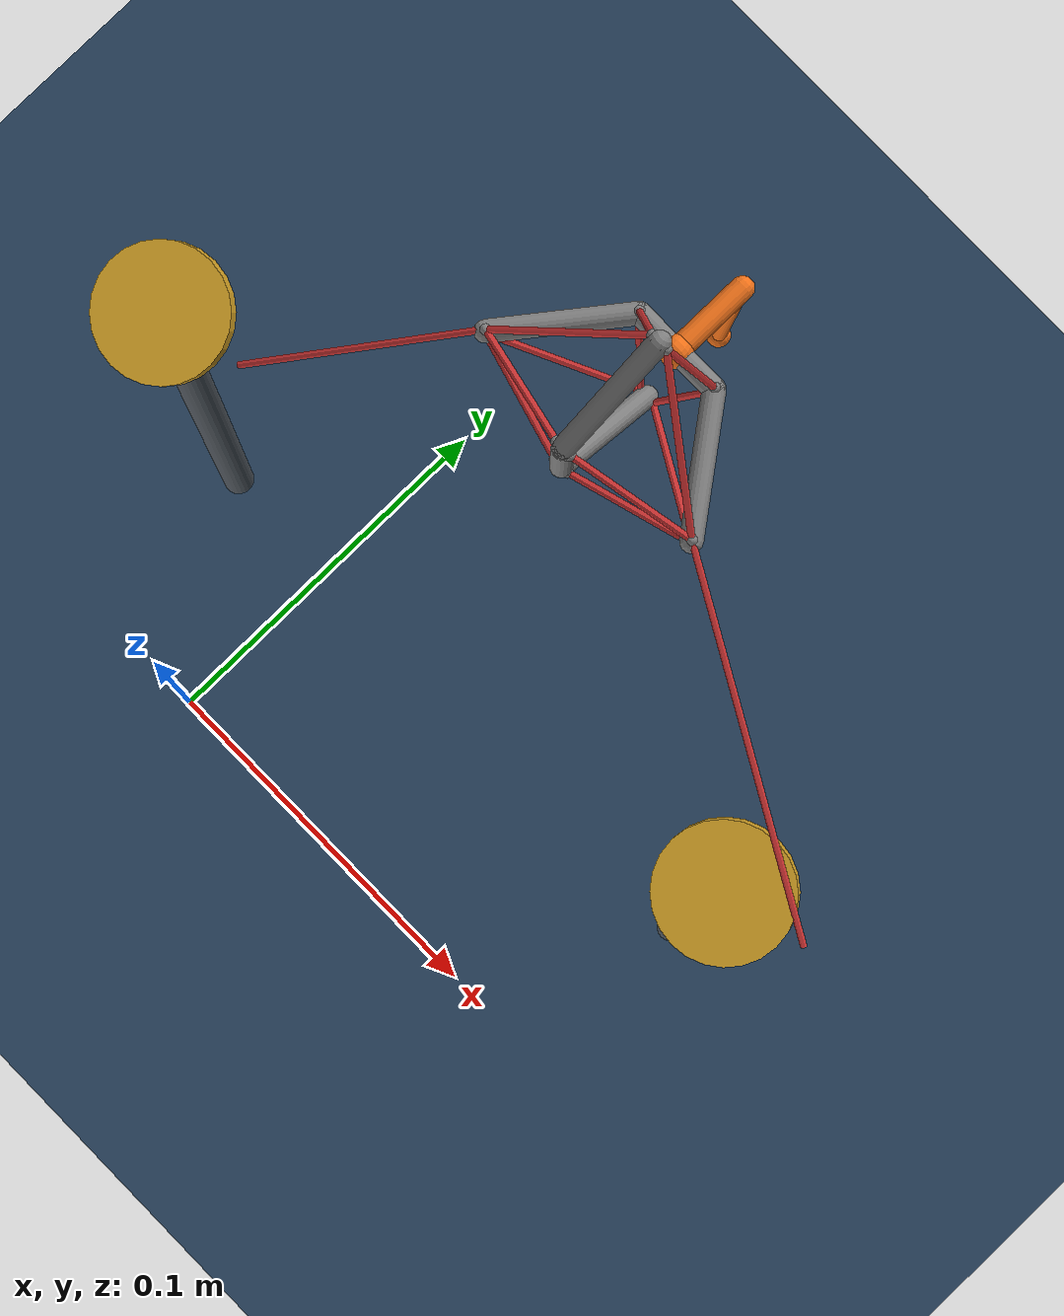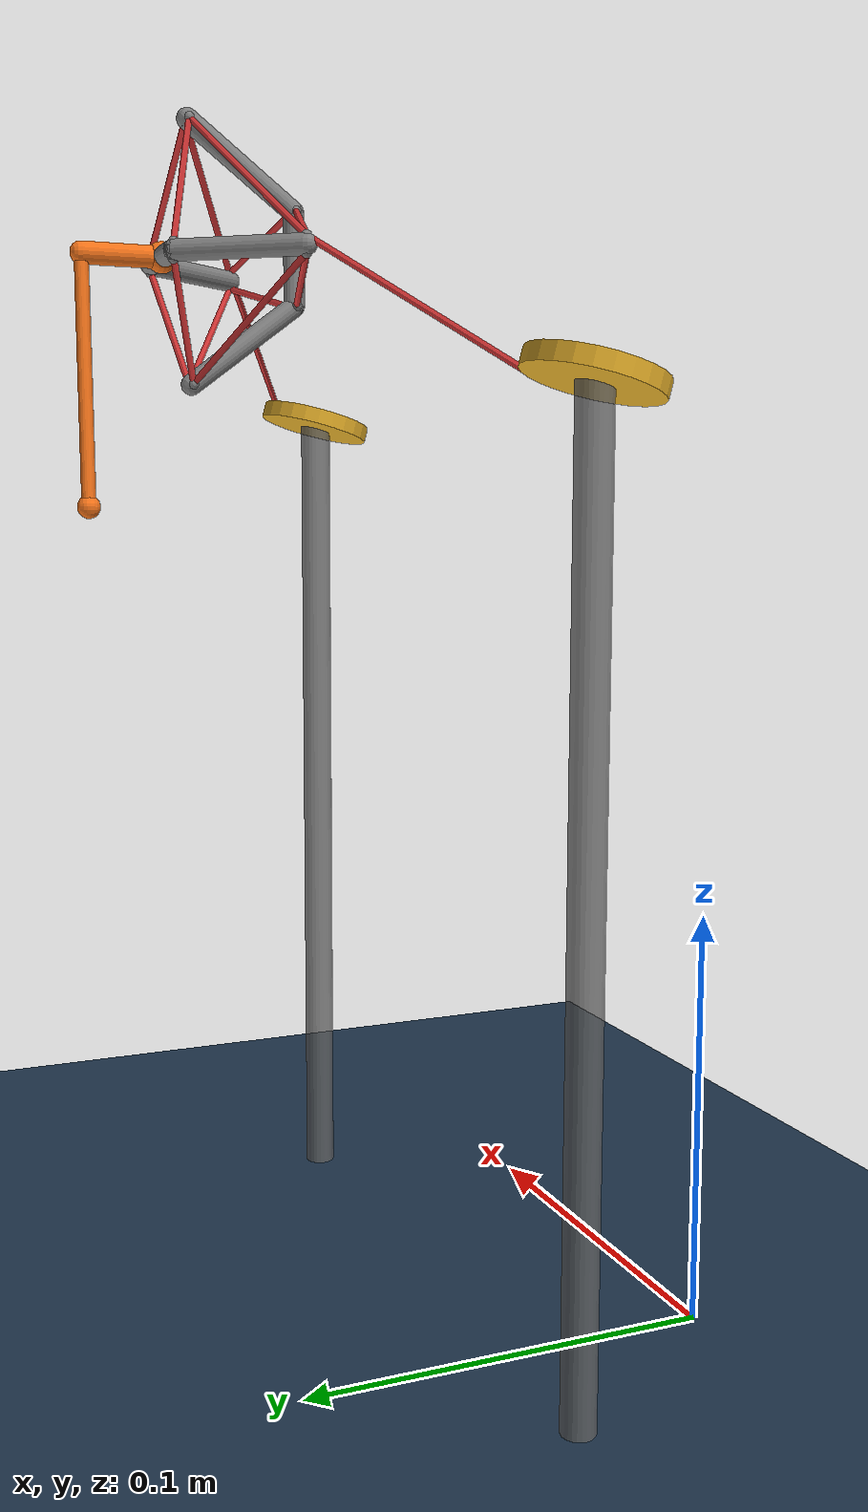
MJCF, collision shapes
<mujoco model="scene">
  <include file="shoulder.xml" />
  <asset>
    <texture type="skybox" builtin="gradient" rgb1="0.3 0.5 0.7" rgb2="0 0 0" width="512" height="3072" />
    <texture type="2d" name="groundplane" builtin="checker" mark="edge" rgb1="0.2 0.3 0.4" rgb2="0.1 0.2 0.3" markrgb="0.8 0.8 0.8" width="300" height="300" />
    <material name="groundplane" texture="groundplane" texuniform="true" texrepeat="5 5" reflectance="0.2" />
  </asset>
  <worldbody>
    <light pos="0 0 3.5" dir="0 0 -1" directional="true" />
    <geom name="floor" size="0 0 0.05" pos="0 0 0" type="plane" material="groundplane" />
  </worldbody>
</mujoco>

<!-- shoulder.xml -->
<mujoco model="shoulder-joint">
  <compiler angle="radian" meshdir="assets" autolimits="true" />
  <option gravity="0 0 -9.81" timestep="0.000375" />

  <visual>
    <headlight diffuse="0.6 0.6 0.6" ambient="0.3 0.3 0.3" specular="0 0 0" />
    <rgba haze="0.15 0.25 0.35 1" />
    <global azimuth="160" elevation="-20" />
  </visual>

  <asset>
    <mesh file="wing.stl" />
    <material name="wing_material" rgba="0.615686 0.811765 0.929412 1" />
  </asset>

  <default>
    <default class="shoulder-joint">
      <joint frictionloss="0.1" armature="0.005" />
      <default class="visual">
        <geom type="mesh" contype="0" conaffinity="0" group="2" />
      </default>
      <default class="collision">
        <geom group="3" />
      </default>
    </default>
    <default class="string">
      <tendon width="0.00075" rgba="0.8 0.2 0.2 1" limited="true" stiffness="50" damping="0.05" />
    </default>
  </default>

  <worldbody>
    <!-- Movable strut assembly (part_1) attached via free joint, with wing attached to it. -->
    <body name="part_1" pos="0.005 0.08 0.25" childclass="shoulder-joint" quat="0.707107 -0.707107 0.0 0.0">
      <freejoint name="part_1_freejoint" />
      <geom name="part_1_rod_0" type="capsule" fromto="0.07136234666666666 -0.0017373466666666666 0.010695746666666665 0.07136234666666666 0.0018626533333333333 0.010695746666666665" size="0.0012" mass="0.0010797839999999999" rgba="0.5 0.5 0.5 1" />
      <geom name="part_1_rod_1" type="capsule" fromto="0.05306234666666666 -0.0017373466666666666 0.03478790666666666 0.05306234666666666 0.0018626533333333333 0.03478790666666666" size="0.0012" mass="0.0010797839999999999" rgba="0.5 0.5 0.5 1" />
      <geom name="part_1_rod_2" type="capsule" fromto="0.032062346666666665 -0.0017373466666666666 0.03478790666666666 0.032062346666666665 0.0018626533333333333 0.03478790666666666" size="0.0012" mass="0.0010797839999999999" rgba="0.5 0.5 0.5 1" />
      <geom name="part_1_rod_3" type="capsule" fromto="0.013762346666666665 -0.0017373466666666666 0.010695746666666665 0.013762346666666665 0.0018626533333333333 0.010695746666666665" size="0.0012" mass="0.0010797839999999999" rgba="0.5 0.5 0.5 1" />
      <geom name="part_1_rod_4" type="capsule" fromto="0.07136210666666666 6.289333333333334e-05 0.010695746666666665 0.053062106666666664 6.289333333333334e-05 0.034788146666666665" size="0.0024" mass="0.0021602159999999995" rgba="0.5 0.5 0.5 1" />
      <geom name="part_1_rod_5" type="capsule" fromto="0.053062106666666664 6.289333333333334e-05 0.034788146666666665 0.032062106666666666 6.289333333333334e-05 0.034788146666666665" size="0.0024" mass="0.0021602159999999995" rgba="0.5 0.5 0.5 1" />
      <geom name="part_1_rod_6" type="capsule" fromto="0.032062106666666666 6.289333333333334e-05 0.034788146666666665 0.013762106666666666 6.289333333333334e-05 0.010695746666666665" size="0.0024" mass="0.0021602159999999995" rgba="0.5 0.5 0.5 1" />

      <site name="part_1_t1" pos="0.07136234666666666 -0.0017373466666666666 0.010695746666666665" size="0.002" rgba="0.2 0.8 0.2 1" group="3" />
      <site name="part_1_t2" pos="0.05306234666666666 -0.0017373466666666666 0.03478790666666666" size="0.002" rgba="0.2 0.8 0.2 1" group="3" />
      <site name="part_1_t3" pos="0.032062346666666665 -0.0017373466666666666 0.03478790666666666" size="0.002" rgba="0.2 0.8 0.2 1" group="3" />
      <site name="part_1_t4" pos="0.013762346666666665 -0.0017373466666666666 0.010695746666666665" size="0.002" rgba="0.2 0.8 0.2 1" group="3" />
      <site name="part_1_t1_2" pos="0.07136234666666666 0.0018626533333333333 0.010695746666666665" size="0.002" rgba="0.2 0.8 0.2 1" group="3" />
      <site name="part_1_t2_2" pos="0.05306234666666666 0.0018626533333333333 0.03478790666666666" size="0.002" rgba="0.2 0.8 0.2 1" group="3" />
      <site name="part_1_t3_2" pos="0.032062346666666665 0.0018626533333333333 0.03478790666666666" size="0.002" rgba="0.2 0.8 0.2 1" group="3" />
      <site name="part_1_t4_2" pos="0.013762346666666665 0.0018626533333333333 0.010695746666666665" size="0.002" rgba="0.2 0.8 0.2 1" group="3" />

      <body name="wing" pos="0.04256210666666667 6.289333333333334e-05 0.034788146666666665" childclass="shoulder-joint">
        <joint name="wing_pitch" type="hinge" axis="0.0 0.0 1.0" limited="true" range="-1.0 1.0" springref="0.0" stiffness="0.003" damping="0.0005" armature="1e-05" ref="0.0" />
        <geom name="wing_pitch_hub" type="sphere" pos="0.0 0.0 0.0" size="0.0035" mass="0.0005" rgba="0.95 0.45 0.1 1" contype="0" conaffinity="0" group="2" />
        <geom name="wing_pitch_rod" type="capsule" fromto="0.0 0.0 0.0 0.0 0.0 0.018" size="0.0025" mass="0.001" rgba="0.95 0.45 0.1 1" class="visual" />
        <geom name="wing_pitch_mount" type="capsule" fromto="0.0 0.0 0.018 -0.0019299 0.055 0.018095999999999998" size="0.0016" mass="0.0004" rgba="0.95 0.45 0.1 1" class="visual" />
        <geom name="wing_mount_hub" type="sphere" pos="-0.0019299 0.055 0.018095999999999998" size="0.0026" mass="0.0002" rgba="0.95 0.45 0.1 1" contype="0" conaffinity="0" group="2" />
        <geom type="mesh" mesh="wing" material="wing_material" pos="-0.0019299 0.055 0.018095999999999998" quat="0.521334 -0.477714 -0.521334 -0.477714" class="visual" />
      </body>
    </body>

    <!-- Static base strut assembly (part_2) - rigidly fixed to world. -->
    <body name="part_2" pos="0.0 0.11 0.25" childclass="shoulder-joint" quat="0.707107 -0.707107 0.0 0.0">
      <geom name="part_2_rod_0" type="capsule" fromto="0.045410653333333335 0.02760491333333334 -0.0014160866666666667 0.049010653333333334 0.02760491333333334 -0.0014160866666666667" size="0.0012" mass="0.0010797839999999999" rgba="0.5 0.5 0.5 1" />
      <geom name="part_2_rod_1" type="capsule" fromto="0.045410653333333335 0.009304913333333333 -0.026016086666666667 0.049010653333333334 0.009304913333333333 -0.026016086666666667" size="0.0012" mass="0.0010797839999999999" rgba="0.5 0.5 0.5 1" />
      <geom name="part_2_rod_2" type="capsule" fromto="0.045410653333333335 -0.011695086666666667 -0.026016086666666667 0.049010653333333334 -0.011695086666666667 -0.026016086666666667" size="0.0012" mass="0.0010797839999999999" rgba="0.5 0.5 0.5 1" />
      <geom name="part_2_rod_3" type="capsule" fromto="0.045410653333333335 -0.02999508666666666 -0.0014160866666666667 0.049010653333333334 -0.02999508666666666 -0.0014160866666666667" size="0.0012" mass="0.0010797839999999999" rgba="0.5 0.5 0.5 1" />
      <geom name="part_2_rod_4" type="capsule" fromto="0.04721089333333334 0.027604973333333335 -0.001416026666666667 0.04721089333333334 0.009304973333333333 -0.026016026666666667" size="0.0024" mass="0.0021602159999999995" rgba="0.5 0.5 0.5 1" />
      <geom name="part_2_rod_5" type="capsule" fromto="0.04721089333333334 0.009304973333333333 -0.026016026666666667 0.04721089333333334 -0.011695026666666667 -0.026016026666666667" size="0.0024" mass="0.0021602159999999995" rgba="0.5 0.5 0.5 1" />
      <geom name="part_2_rod_6" type="capsule" fromto="0.04721089333333334 -0.011695026666666667 -0.026016026666666667 0.04721089333333334 -0.029995026666666664 -0.001416026666666667" size="0.0024" mass="0.0021602159999999995" rgba="0.5 0.5 0.5 1" />

      <site name="part_2_t1" pos="0.045410653333333335 0.02760491333333334 -0.0014160866666666667" size="0.002" rgba="0.2 0.8 0.2 1" group="3" />
      <site name="part_2_t2" pos="0.045410653333333335 0.009304913333333333 -0.026016086666666667" size="0.002" rgba="0.2 0.8 0.2 1" group="3" />
      <site name="part_2_t3" pos="0.045410653333333335 -0.011695086666666667 -0.026016086666666667" size="0.002" rgba="0.2 0.8 0.2 1" group="3" />
      <site name="part_2_t4" pos="0.045410653333333335 -0.02999508666666666 -0.0014160866666666667" size="0.002" rgba="0.2 0.8 0.2 1" group="3" />
      <site name="part_2_t1_2" pos="0.049010653333333334 -0.02999508666666666 -0.0014160866666666667" size="0.002" rgba="0.2 0.8 0.2 1" group="3" />
      <site name="part_2_t2_2" pos="0.049010653333333334 -0.011695086666666667 -0.026016086666666667" size="0.002" rgba="0.2 0.8 0.2 1" group="3" />
      <site name="part_2_t3_2" pos="0.049010653333333334 0.009304913333333333 -0.026016086666666667" size="0.002" rgba="0.2 0.8 0.2 1" group="3" />
      <site name="part_2_t4_2" pos="0.049010653333333334 0.02760491333333334 -0.0014160866666666667" size="0.002" rgba="0.2 0.8 0.2 1" group="3" />
    </body>

    <!-- Motor pillars with rotating crank disks -->
    <body name="t1_pillar" pos="0.13 0.05 0.0">
      <inertial pos="0 0 0.11" mass="0.1" fullinertia="1e-4 1e-4 1e-4 0 0 0" />
      <geom name="t1_pillar_geom" type="cylinder" size="0.004 0.11" pos="0 0 0.11" rgba="0.4 0.4 0.4 0.8" contype="0" conaffinity="0" group="2" />
      <body name="t1_disk" pos="0 0 0.22" euler="0.26 0.0 0.0">
        <joint name="t1_disk_hinge" type="hinge" axis="0 0 1" damping="0.001" armature="0.0001" />
        <inertial pos="0 0 0" mass="0.02" fullinertia="1e-6 2e-6 1e-6 0 0 0" />
        <geom name="t1_disk_geom" type="cylinder" size="0.015 0.002" rgba="0.85 0.65 0.15 1" contype="0" conaffinity="0" group="2" />
        <site name="crank_disk_t1" pos="0.01875 0.00375 0.0" size="0.002" rgba="0.2 0.8 0.2 1" group="3" />
      </body>
    </body>

    <body name="t4_pillar" pos="-0.034 0.05 0.0">
      <inertial pos="0 0 0.11" mass="0.1" fullinertia="1e-4 1e-4 1e-4 0 0 0" />
      <geom name="t4_pillar_geom" type="cylinder" size="0.004 0.11" pos="0 0 0.11" rgba="0.4 0.4 0.4 0.8" contype="0" conaffinity="0" group="2" />
      <body name="t4_disk" pos="0 0 0.22" euler="0.26 0.0 0.0">
        <joint name="t4_disk_hinge" type="hinge" axis="0 0 1" damping="0.001" armature="0.0001" />
        <inertial pos="0 0 0" mass="0.02" fullinertia="1e-6 2e-6 1e-6 0 0 0" />
        <geom name="t4_disk_geom" type="cylinder" size="0.015 0.002" rgba="0.85 0.65 0.15 1" contype="0" conaffinity="0" group="2" />
        <site name="crank_disk_t4" pos="0.01875 0.00375 0.0" size="0.002" rgba="0.2 0.8 0.2 1" group="3" />
      </body>
    </body>
  </worldbody>

  <tendon>
    <!-- Structural cables connecting part_1 sites to part_2 sites. -->
    <spatial name="cable_t1__t1_2"   class="string" range="0.0 0.02418">
      <site site="part_1_t1" />   <site site="part_2_t1_2" />
    </spatial>
    <spatial name="cable_t1__t2_2"   class="string" range="0.0 0.024480000000000002">
      <site site="part_1_t1" />   <site site="part_2_t2_2" />
    </spatial>
    <spatial name="cable_t1_2__t3_2" class="string" range="0.0 0.024239999999999998">
      <site site="part_1_t1_2" /> <site site="part_2_t3_2" />
    </spatial>
    <spatial name="cable_t1_2__t4_2" class="string" range="0.0 0.02502">
      <site site="part_1_t1_2" /> <site site="part_2_t4_2" />
    </spatial>
    <spatial name="cable_t2__t1_2"   class="string" range="0.0 0.02454">
      <site site="part_1_t2" />   <site site="part_2_t1_2" />
    </spatial>
    <spatial name="cable_t2_2__t4_2" class="string" range="0.0 0.023819999999999997">
      <site site="part_1_t2_2" /> <site site="part_2_t4_2" />
    </spatial>
    <spatial name="cable_t3_2__t1"   class="string" range="0.0 0.02394">
      <site site="part_1_t3_2" /> <site site="part_2_t1" />
    </spatial>
    <spatial name="cable_t4_2__t1"   class="string" range="0.0 0.02502">
      <site site="part_1_t4_2" /> <site site="part_2_t1" />
    </spatial>
    <spatial name="cable_t3__t4"     class="string" range="0.0 0.02454">
      <site site="part_1_t3" />   <site site="part_2_t4" />
    </spatial>
    <spatial name="cable_t4__t4"     class="string" range="0.0 0.0243">
      <site site="part_1_t4" />   <site site="part_2_t4" />
    </spatial>
    <spatial name="cable_t4_2__t2"   class="string" range="0.0 0.0243">
      <site site="part_1_t4_2" /> <site site="part_2_t2" />
    </spatial>
    <spatial name="cable_t4__t3"     class="string" range="0.0 0.02454">
      <site site="part_1_t4" />   <site site="part_2_t3" />
    </spatial>

    <spatial name="motor_cable_t1" class="string" limited="false"
             stiffness="200" damping="0.1" springlength="0.02"
             solreflimit="0.02857142857142857 1.0">
      <site site="part_1_t1" />
      <site site="crank_disk_t1" />
    </spatial>
    <spatial name="motor_cable_t4" class="string" limited="false"
             stiffness="200" damping="0.1" springlength="0.02"
             solreflimit="0.02857142857142857 1.0">
      <site site="part_1_t4" />
      <site site="crank_disk_t4" />
    </spatial>
  </tendon>

  <equality>
    <!-- Crank disks rotate in opposite phase, like the original bi-shoulder. -->
    <joint joint1="t1_disk_hinge" joint2="t4_disk_hinge" polycoef="3.14159 1.0 0.0 0.0 0.0" />
  </equality>

  <actuator>
    <velocity name="motor_t1" joint="t1_disk_hinge" kv="0.25" ctrlrange="-10.0 10.0" />
    <velocity name="motor_t4" joint="t4_disk_hinge" kv="0.25" ctrlrange="-10.0 10.0" />
  </actuator>
</mujoco>
